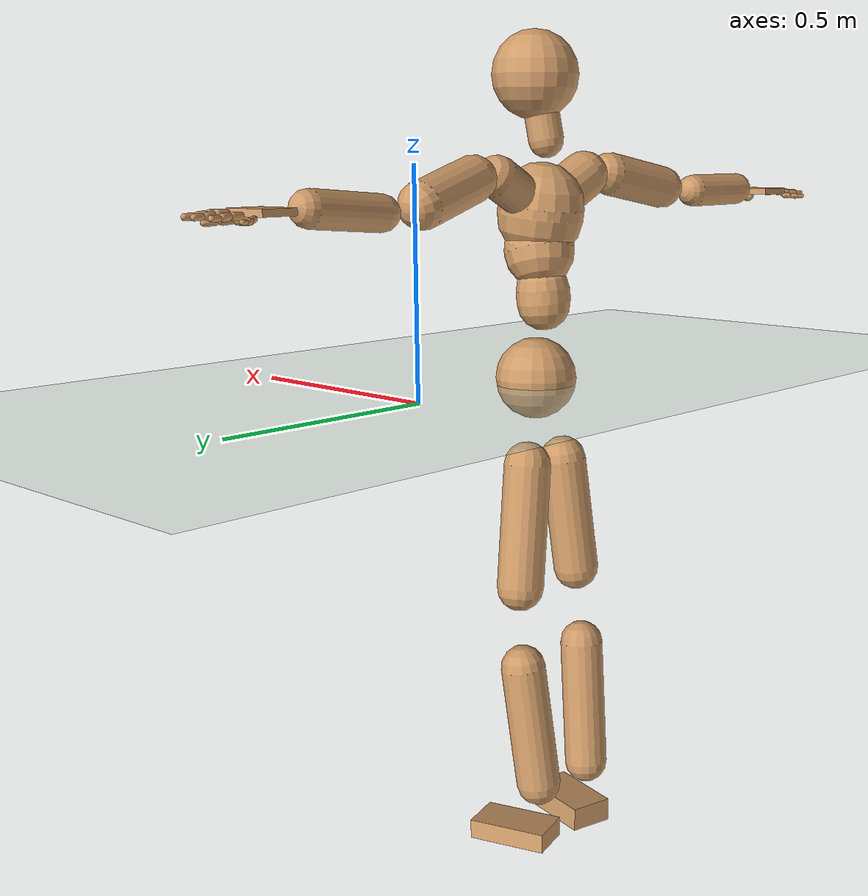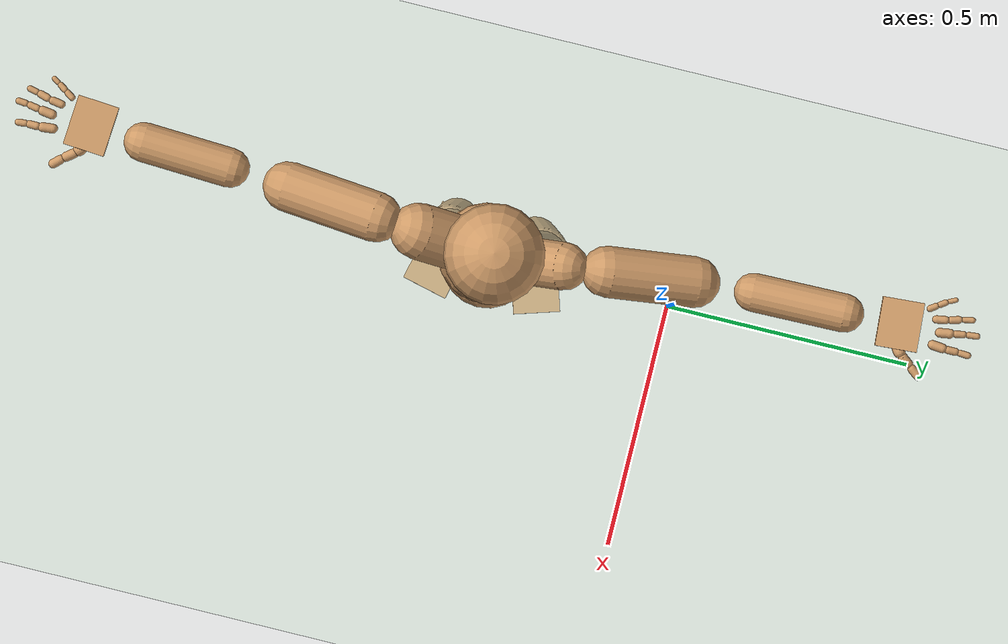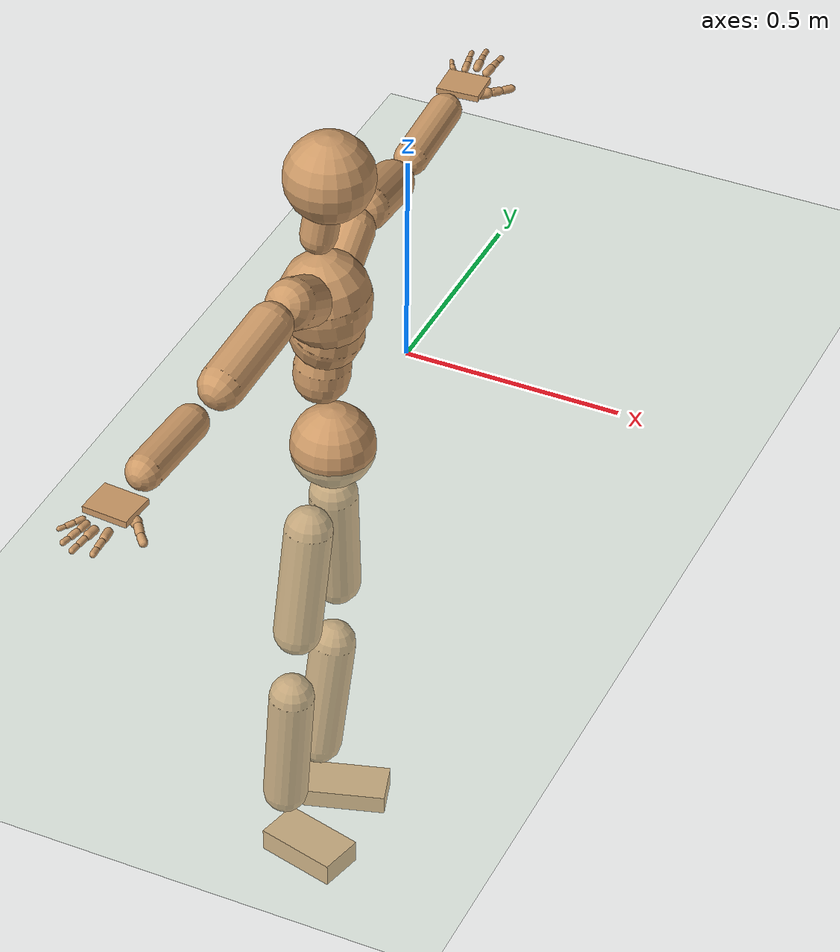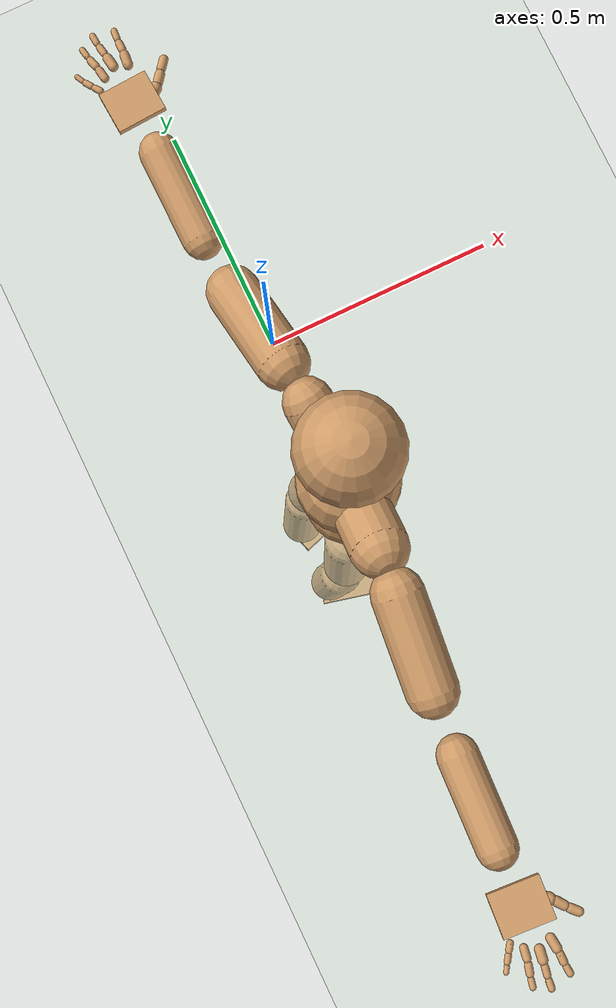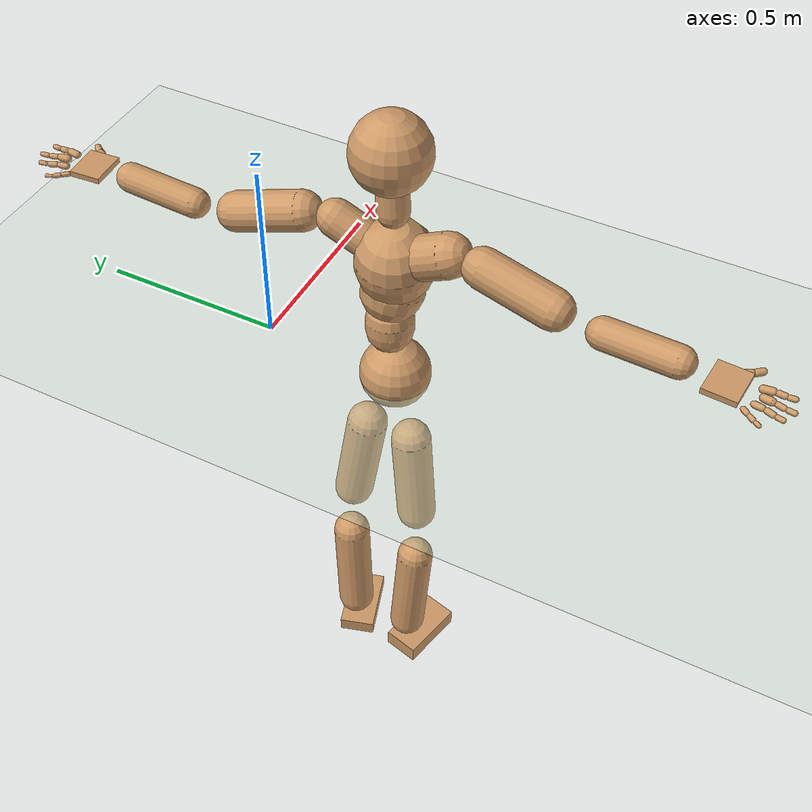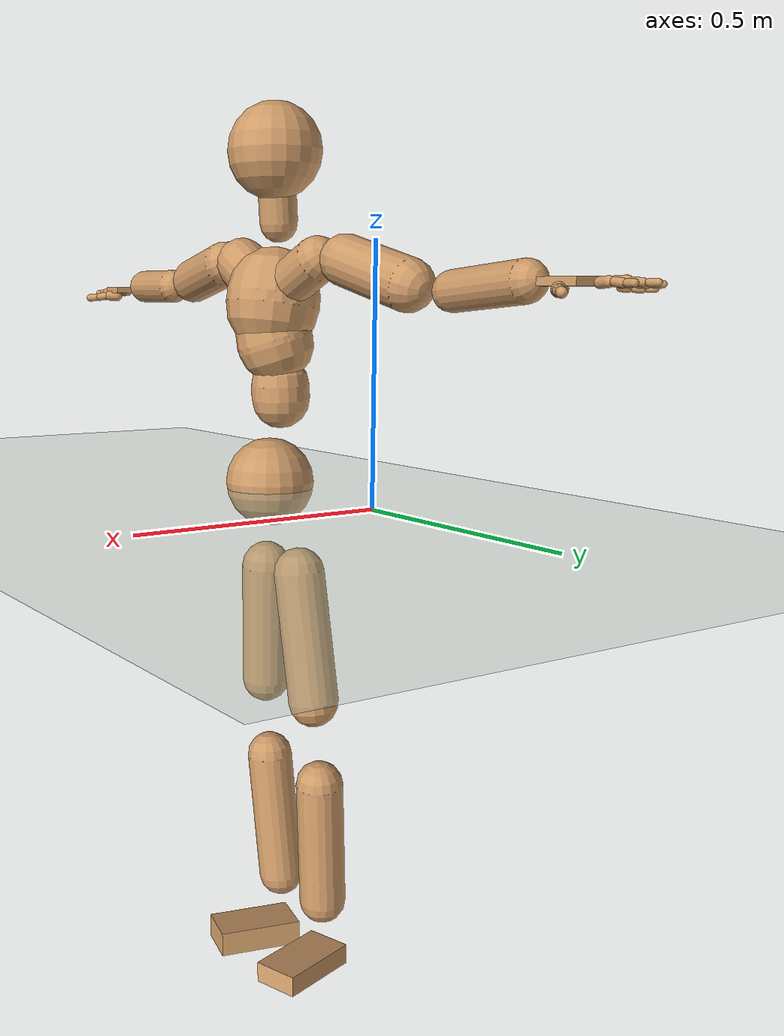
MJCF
<mujoco model="humanoid">
  <compiler coordinate="local" angle="radian"/>
  <default>
    <joint damping="0.0" armature="0.01" stiffness="0.0" limited="true"/>
    <geom conaffinity="1" condim="3" contype="7" margin="0.001" rgba="0.8 0.6 .4 1"/>
  </default>
  <asset>
    <texture type="skybox" builtin="gradient" rgb1=".4 .5 .6" rgb2="0 0 0" width="100" height="100"/>
    <texture builtin="flat" height="1278" mark="cross" markrgb="1 1 1" name="texgeom" random="0.01" rgb1="0.8 0.6 0.4" rgb2="0.8 0.6 0.4" type="cube" width="127"/>
    <texture builtin="checker" height="100" name="texplane" rgb1="0 0 0" rgb2="0.8 0.8 0.8" type="2d" width="100"/>
    <material name="MatPlane" reflectance="0.5" shininess="1" specular="1" texrepeat="60 60" texture="texplane"/>
    <material name="geom" texture="texgeom" texuniform="true"/>
  </asset>
  <worldbody>
    <light cutoff="100" diffuse="1 1 1" dir="-0 0 -1.3" directional="true" exponent="1" pos="0 0 1.3" specular=".1 .1 .1"/>
    <geom conaffinity="1" condim="3" name="floor" pos="0 0 0" rgba="0.8 0.9 0.8 1" size="100 100 .2" type="plane" material="MatPlane"/>
    <body name="Pelvis" pos="0.0005 -0.3733 0.0114">
      <freejoint name="Pelvis"/>
      <geom type="sphere" contype="1" conaffinity="1" density="500" size="0.0939" pos="0.0000 0.0000 0.0000" name="Pelvis"/>
      <body name="L_Hip" pos="-0.0281 0.053 -0.0981">
        <joint name="L_Hip_x" type="hinge" pos="0 0 0" axis="1 0 0" stiffness="800" damping="80" armature="0.02" range="-180.0000 180.0000"/>
        <joint name="L_Hip_y" type="hinge" pos="0 0 0" axis="0 1 0" stiffness="800" damping="80" armature="0.02" range="-180.0000 180.0000"/>
        <joint name="L_Hip_z" type="hinge" pos="0 0 0" axis="0 0 1" stiffness="800" damping="80" armature="0.02" range="-180.0000 180.0000"/>
        <geom type="capsule" contype="1" conaffinity="1" density="500" fromto="-0.0042 0.0129 -0.0939 -0.0166 0.0517 -0.3758" size="0.0544" name="L_Hip"/>
        <body name="L_Knee" pos="-0.0208 0.0647 -0.4697">
          <joint name="L_Knee_x" type="hinge" pos="0 0 0" axis="1 0 0" stiffness="800" damping="80" armature="0.02" range="-180.0000 180.0000"/>
          <joint name="L_Knee_y" type="hinge" pos="0 0 0" axis="0 1 0" stiffness="800" damping="80" armature="0.02" range="-180.0000 180.0000"/>
          <joint name="L_Knee_z" type="hinge" pos="0 0 0" axis="0 0 1" stiffness="800" damping="80" armature="0.02" range="-180.0000 180.0000"/>
          <geom type="capsule" contype="1" conaffinity="1" density="500" fromto="-0.0086 -0.0081 -0.0971 -0.0346 -0.0325 -0.3882" size="0.0521" name="L_Knee"/>
          <body name="L_Ankle" pos="-0.0432 -0.0407 -0.4853">
            <joint name="L_Ankle_x" type="hinge" pos="0 0 0" axis="1 0 0" stiffness="800" damping="80" armature="0.02" range="-180.0000 180.0000"/>
            <joint name="L_Ankle_y" type="hinge" pos="0 0 0" axis="0 1 0" stiffness="800" damping="80" armature="0.02" range="-180.0000 180.0000"/>
            <joint name="L_Ankle_z" type="hinge" pos="0 0 0" axis="0 0 1" stiffness="800" damping="80" armature="0.02" range="-180.0000 180.0000"/>
            <geom type="box" contype="1" conaffinity="1" density="500" pos="0.0713 0.0219 -0.0360" size="0.0948 0.0516 0.0227" quat="0.9889 0.0000 0.0000 0.1484" name="L_Ankle"/>
            <body name="L_Toe" pos="0.1426 0.0438 -0.0719">
              <joint name="L_Toe_x" type="hinge" pos="0 0 0" axis="1 0 0" stiffness="500" damping="50" armature="0.02" range="-180.0000 180.0000"/>
              <joint name="L_Toe_y" type="hinge" pos="0 0 0" axis="0 1 0" stiffness="500" damping="50" armature="0.02" range="-180.0000 180.0000"/>
              <joint name="L_Toe_z" type="hinge" pos="0 0 0" axis="0 0 1" stiffness="500" damping="50" armature="0.02" range="-180.0000 180.0000"/>
              <geom type="box" contype="1" conaffinity="1" density="500" pos="0.0000 0.0000 0.0346" size="0.001 0.0024 0.0011" quat="0.9883 0.0000 0.0000 0.1527" name="L_Toe"/>
            </body>
          </body>
        </body>
      </body>
      <body name="R_Hip" pos="-0.024 -0.0538 -0.1078">
        <joint name="R_Hip_x" type="hinge" pos="0 0 0" axis="1 0 0" stiffness="800" damping="80" armature="0.02" range="-180.0000 180.0000"/>
        <joint name="R_Hip_y" type="hinge" pos="0 0 0" axis="0 1 0" stiffness="800" damping="80" armature="0.02" range="-180.0000 180.0000"/>
        <joint name="R_Hip_z" type="hinge" pos="0 0 0" axis="0 0 1" stiffness="800" damping="80" armature="0.02" range="-180.0000 180.0000"/>
        <geom type="capsule" contype="1" conaffinity="1" density="500" fromto="-0.0052 -0.0099 -0.0901 -0.0210 -0.0397 -0.3606" size="0.0537" name="R_Hip"/>
        <body name="R_Knee" pos="-0.0262 -0.0496 -0.4507">
          <joint name="R_Knee_x" type="hinge" pos="0 0 0" axis="1 0 0" stiffness="800" damping="80" armature="0.02" range="-180.0000 180.0000"/>
          <joint name="R_Knee_y" type="hinge" pos="0 0 0" axis="0 1 0" stiffness="800" damping="80" armature="0.02" range="-180.0000 180.0000"/>
          <joint name="R_Knee_z" type="hinge" pos="0 0 0" axis="0 0 1" stiffness="800" damping="80" armature="0.02" range="-180.0000 180.0000"/>
          <geom type="capsule" contype="1" conaffinity="1" density="500" fromto="-0.0082 0.0031 -0.1005 -0.0328 0.0122 -0.4020" size="0.0513" name="R_Knee"/>
          <body name="R_Ankle" pos="-0.041 0.0153 -0.5024">
            <joint name="R_Ankle_x" type="hinge" pos="0 0 0" axis="1 0 0" stiffness="800" damping="80" armature="0.02" range="-180.0000 180.0000"/>
            <joint name="R_Ankle_y" type="hinge" pos="0 0 0" axis="0 1 0" stiffness="800" damping="80" armature="0.02" range="-180.0000 180.0000"/>
            <joint name="R_Ankle_z" type="hinge" pos="0 0 0" axis="0 0 1" stiffness="800" damping="80" armature="0.02" range="-180.0000 180.0000"/>
            <geom type="box" contype="1" conaffinity="1" density="500" pos="0.0744 -0.0180 -0.0351" size="0.0948 0.0519 0.0275" quat="0.9930 0.0000 0.0000 -0.1185" name="R_Ankle"/>
            <body name="R_Toe" pos="0.1488 -0.036 -0.0703">
              <joint name="R_Toe_x" type="hinge" pos="0 0 0" axis="1 0 0" stiffness="500" damping="50" armature="0.02" range="-180.0000 180.0000"/>
              <joint name="R_Toe_y" type="hinge" pos="0 0 0" axis="0 1 0" stiffness="500" damping="50" armature="0.02" range="-180.0000 180.0000"/>
              <joint name="R_Toe_z" type="hinge" pos="0 0 0" axis="0 0 1" stiffness="500" damping="50" armature="0.02" range="-180.0000 180.0000"/>
              <geom type="box" contype="1" conaffinity="1" density="500" pos="0.0000 0.0000 0.0289" size="0.0009 0.0024 0.0011" quat="0.9938 0.0000 0.0000 -0.1107" name="R_Toe"/>
            </body>
          </body>
        </body>
      </body>
      <body name="Torso" pos="-0.0306 -0.0003 0.1134">
        <joint name="Torso_x" type="hinge" pos="0 0 0" axis="1 0 0" stiffness="1000" damping="100" armature="0.02" range="-180.0000 180.0000"/>
        <joint name="Torso_y" type="hinge" pos="0 0 0" axis="0 1 0" stiffness="1000" damping="100" armature="0.02" range="-180.0000 180.0000"/>
        <joint name="Torso_z" type="hinge" pos="0 0 0" axis="0 0 1" stiffness="1000" damping="100" armature="0.02" range="-180.0000 180.0000"/>
        <geom type="capsule" contype="1" conaffinity="1" density="500" fromto="0.0060 0.0044 0.0925 0.0040 0.0029 0.0617" size="0.0616" name="Torso"/>
        <body name="Spine" pos="0.0101 0.0073 0.1542">
          <joint name="Spine_x" type="hinge" pos="0 0 0" axis="1 0 0" stiffness="1000" damping="100" armature="0.02" range="-180.0000 180.0000"/>
          <joint name="Spine_y" type="hinge" pos="0 0 0" axis="0 1 0" stiffness="1000" damping="100" armature="0.02" range="-180.0000 180.0000"/>
          <joint name="Spine_z" type="hinge" pos="0 0 0" axis="0 0 1" stiffness="1000" damping="100" armature="0.02" range="-180.0000 180.0000"/>
          <geom type="capsule" contype="1" conaffinity="1" density="500" fromto="0.0097 -0.0052 0.0342 0.0064 -0.0035 0.0228" size="0.0805" name="Spine"/>
          <body name="Chest" pos="0.0161 -0.0086 0.0571">
            <joint name="Chest_x" type="hinge" pos="0 0 0" axis="1 0 0" stiffness="1000" damping="100" armature="0.02" range="-180.0000 180.0000"/>
            <joint name="Chest_y" type="hinge" pos="0 0 0" axis="0 1 0" stiffness="1000" damping="100" armature="0.02" range="-180.0000 180.0000"/>
            <joint name="Chest_z" type="hinge" pos="0 0 0" axis="0 0 1" stiffness="1000" damping="100" armature="0.02" range="-180.0000 180.0000"/>
            <geom type="capsule" contype="1" conaffinity="1" density="500" fromto="-0.0093 -0.0012 0.0678 -0.0062 -0.0008 0.0452" size="0.0984" name="Chest"/>
            <body name="Neck" pos="-0.0273 -0.0067 0.1779">
              <joint name="Neck_x" type="hinge" pos="0 0 0" axis="1 0 0" stiffness="500" damping="50" armature="0.02" range="-180.0000 180.0000"/>
              <joint name="Neck_y" type="hinge" pos="0 0 0" axis="0 1 0" stiffness="500" damping="50" armature="0.02" range="-180.0000 180.0000"/>
              <joint name="Neck_z" type="hinge" pos="0 0 0" axis="0 0 1" stiffness="500" damping="50" armature="0.02" range="-180.0000 180.0000"/>
              <geom type="capsule" contype="1" conaffinity="1" density="500" fromto="0.0046 0.0040 0.0352 0.0183 0.0159 0.1406" size="0.0397" name="Neck"/>
              <body name="Head" pos="0.0229 0.0199 0.1758">
                <joint name="Head_x" type="hinge" pos="0 0 0" axis="1 0 0" stiffness="500" damping="50" armature="0.02" range="-180.0000 180.0000"/>
                <joint name="Head_y" type="hinge" pos="0 0 0" axis="0 1 0" stiffness="500" damping="50" armature="0.02" range="-180.0000 180.0000"/>
                <joint name="Head_z" type="hinge" pos="0 0 0" axis="0 0 1" stiffness="500" damping="50" armature="0.02" range="-180.0000 180.0000"/>
                <geom type="sphere" contype="1" conaffinity="1" density="500" size="0.0976" pos="0.0000 0.0000 0.0000" name="Head"/>
              </body>
            </body>
            <body name="L_Thorax" pos="-0.0079 0.0421 0.0805">
              <joint name="L_Thorax_x" type="hinge" pos="0 0 0" axis="1 0 0" stiffness="500" damping="50" armature="0.02" range="-180.0000 180.0000"/>
              <joint name="L_Thorax_y" type="hinge" pos="0 0 0" axis="0 1 0" stiffness="500" damping="50" armature="0.02" range="-180.0000 180.0000"/>
              <joint name="L_Thorax_z" type="hinge" pos="0 0 0" axis="0 0 1" stiffness="500" damping="50" armature="0.02" range="-180.0000 180.0000"/>
              <geom type="capsule" contype="1" conaffinity="1" density="500" fromto="-0.0023 0.0270 0.0134 -0.0093 0.1081 0.0536" size="0.0474" name="L_Thorax"/>
              <body name="L_Shoulder" pos="-0.0117 0.1351 0.067">
                <joint name="L_Shoulder_x" type="hinge" pos="0 0 0" axis="1 0 0" stiffness="500" damping="50" armature="0.02" range="-180.0000 180.0000"/>
                <joint name="L_Shoulder_y" type="hinge" pos="0 0 0" axis="0 1 0" stiffness="500" damping="50" armature="0.02" range="-180.0000 180.0000"/>
                <joint name="L_Shoulder_z" type="hinge" pos="0 0 0" axis="0 0 1" stiffness="500" damping="50" armature="0.02" range="-180.0000 180.0000"/>
                <geom type="capsule" contype="1" conaffinity="1" density="500" fromto="-0.0073 0.0569 -0.0163 -0.0293 0.2276 -0.0654" size="0.0509" name="L_Shoulder"/>
                <body name="L_Elbow" pos="-0.0366 0.2845 -0.0817">
                  <joint name="L_Elbow_x" type="hinge" pos="0 0 0" axis="1 0 0" stiffness="500" damping="50" armature="0.02" range="-720.0000 720.0000"/>
                  <joint name="L_Elbow_y" type="hinge" pos="0 0 0" axis="0 1 0" stiffness="500" damping="50" armature="0.02" range="-720.0000 720.0000"/>
                  <joint name="L_Elbow_z" type="hinge" pos="0 0 0" axis="0 0 1" stiffness="500" damping="50" armature="0.02" range="-720.0000 720.0000"/>
                  <geom type="capsule" contype="1" conaffinity="1" density="500" fromto="-0.0010 0.0608 0.0047 -0.0038 0.2433 0.0190" size="0.038" name="L_Elbow"/>
                  <body name="L_Wrist" pos="-0.0048 0.3041 0.0237">
                    <joint name="L_Wrist_x" type="hinge" pos="0 0 0" axis="1 0 0" stiffness="300" damping="30" armature="0.02" range="-180.0000 180.0000"/>
                    <joint name="L_Wrist_y" type="hinge" pos="0 0 0" axis="0 1 0" stiffness="300" damping="30" armature="0.02" range="-180.0000 180.0000"/>
                    <joint name="L_Wrist_z" type="hinge" pos="0 0 0" axis="0 0 1" stiffness="300" damping="30" armature="0.02" range="-180.0000 180.0000"/>
                    <geom type="box" contype="1" conaffinity="1" density="500" pos="-0.0033 0.0491 -0.0065" size="0.0413 0.0487 0.0073" quat="0.7304 0.0000 0.0000 -0.6830" name="L_Wrist"/>
                    <body name="L_Index1" pos="0.0196 0.1143 -0.0099">
                      <joint name="L_Index1_x" type="hinge" pos="0 0 0" axis="1 0 0" stiffness="100" damping="10" armature="0.02" range="-180.0000 180.0000"/>
                      <joint name="L_Index1_y" type="hinge" pos="0 0 0" axis="0 1 0" stiffness="100" damping="10" armature="0.02" range="-180.0000 180.0000"/>
                      <joint name="L_Index1_z" type="hinge" pos="0 0 0" axis="0 0 1" stiffness="100" damping="10" armature="0.02" range="-180.0000 180.0000"/>
                      <geom type="capsule" contype="1" conaffinity="1" density="500" fromto="0.0006 0.0068 0.0003 0.0026 0.0272 0.0011" size="0.0093" name="L_Index1"/>
                      <body name="L_Index2" pos="0.0032 0.034 0.0014">
                        <joint name="L_Index2_x" type="hinge" pos="0 0 0" axis="1 0 0" stiffness="100" damping="10" armature="0.02" range="-180.0000 180.0000"/>
                        <joint name="L_Index2_y" type="hinge" pos="0 0 0" axis="0 1 0" stiffness="100" damping="10" armature="0.02" range="-180.0000 180.0000"/>
                        <joint name="L_Index2_z" type="hinge" pos="0 0 0" axis="0 0 1" stiffness="100" damping="10" armature="0.02" range="-180.0000 180.0000"/>
                        <geom type="capsule" contype="1" conaffinity="1" density="500" fromto="-0.0000 0.0048 -0.0005 -0.0001 0.0193 -0.0020" size="0.0076" name="L_Index2"/>
                        <body name="L_Index3" pos="-0.0001 0.0241 -0.0025">
                          <joint name="L_Index3_x" type="hinge" pos="0 0 0" axis="1 0 0" stiffness="100" damping="10" armature="0.02" range="-180.0000 180.0000"/>
                          <joint name="L_Index3_y" type="hinge" pos="0 0 0" axis="0 1 0" stiffness="100" damping="10" armature="0.02" range="-180.0000 180.0000"/>
                          <joint name="L_Index3_z" type="hinge" pos="0 0 0" axis="0 0 1" stiffness="100" damping="10" armature="0.02" range="-180.0000 180.0000"/>
                          <geom type="capsule" contype="1" conaffinity="1" density="500" fromto="0.0004 0.0052 -0.0001 0.0015 0.0209 -0.0004" size="0.0065" name="L_Index3"/>
                        </body>
                      </body>
                    </body>
                    <body name="L_Middle1" pos="-0.0052 0.1227 -0.0078">
                      <joint name="L_Middle1_x" type="hinge" pos="0 0 0" axis="1 0 0" stiffness="100" damping="10" armature="0.02" range="-180.0000 180.0000"/>
                      <joint name="L_Middle1_y" type="hinge" pos="0 0 0" axis="0 1 0" stiffness="100" damping="10" armature="0.02" range="-180.0000 180.0000"/>
                      <joint name="L_Middle1_z" type="hinge" pos="0 0 0" axis="0 0 1" stiffness="100" damping="10" armature="0.02" range="-180.0000 180.0000"/>
                      <geom type="capsule" contype="1" conaffinity="1" density="500" fromto="-0.0010 0.0065 0.0000 -0.0039 0.0260 0.0001" size="0.0094" name="L_Middle1"/>
                      <body name="L_Middle2" pos="-0.0049 0.0325 0.0001">
                        <joint name="L_Middle2_x" type="hinge" pos="0 0 0" axis="1 0 0" stiffness="100" damping="10" armature="0.02" range="-180.0000 180.0000"/>
                        <joint name="L_Middle2_y" type="hinge" pos="0 0 0" axis="0 1 0" stiffness="100" damping="10" armature="0.02" range="-180.0000 180.0000"/>
                        <joint name="L_Middle2_z" type="hinge" pos="0 0 0" axis="0 0 1" stiffness="100" damping="10" armature="0.02" range="-180.0000 180.0000"/>
                        <geom type="capsule" contype="1" conaffinity="1" density="500" fromto="-0.0009 0.0050 -0.0005 -0.0036 0.0201 -0.0020" size="0.007" name="L_Middle2"/>
                        <body name="L_Middle3" pos="-0.0046 0.0251 -0.0025">
                          <joint name="L_Middle3_x" type="hinge" pos="0 0 0" axis="1 0 0" stiffness="100" damping="10" armature="0.02" range="-180.0000 180.0000"/>
                          <joint name="L_Middle3_y" type="hinge" pos="0 0 0" axis="0 1 0" stiffness="100" damping="10" armature="0.02" range="-180.0000 180.0000"/>
                          <joint name="L_Middle3_z" type="hinge" pos="0 0 0" axis="0 0 1" stiffness="100" damping="10" armature="0.02" range="-180.0000 180.0000"/>
                          <geom type="capsule" contype="1" conaffinity="1" density="500" fromto="-0.0005 0.0054 -0.0001 -0.0020 0.0217 -0.0004" size="0.0063" name="L_Middle3"/>
                        </body>
                      </body>
                    </body>
                    <body name="L_Pinky1" pos="-0.0453 0.0966 -0.0164">
                      <joint name="L_Pinky1_x" type="hinge" pos="0 0 0" axis="1 0 0" stiffness="100" damping="10" armature="0.02" range="-180.0000 180.0000"/>
                      <joint name="L_Pinky1_y" type="hinge" pos="0 0 0" axis="0 1 0" stiffness="100" damping="10" armature="0.02" range="-180.0000 180.0000"/>
                      <joint name="L_Pinky1_z" type="hinge" pos="0 0 0" axis="0 0 1" stiffness="100" damping="10" armature="0.02" range="-180.0000 180.0000"/>
                      <geom type="capsule" contype="1" conaffinity="1" density="500" fromto="-0.0024 0.0034 -0.0003 -0.0095 0.0138 -0.0012" size="0.0065" name="L_Pinky1"/>
                      <body name="L_Pinky2" pos="-0.0119 0.0172 -0.0015">
                        <joint name="L_Pinky2_x" type="hinge" pos="0 0 0" axis="1 0 0" stiffness="100" damping="10" armature="0.02" range="-180.0000 180.0000"/>
                        <joint name="L_Pinky2_y" type="hinge" pos="0 0 0" axis="0 1 0" stiffness="100" damping="10" armature="0.02" range="-180.0000 180.0000"/>
                        <joint name="L_Pinky2_z" type="hinge" pos="0 0 0" axis="0 0 1" stiffness="100" damping="10" armature="0.02" range="-180.0000 180.0000"/>
                        <geom type="capsule" contype="1" conaffinity="1" density="500" fromto="-0.0023 0.0034 -0.0003 -0.0091 0.0135 -0.0013" size="0.0062" name="L_Pinky2"/>
                        <body name="L_Pinky3" pos="-0.0113 0.0168 -0.0017">
                          <joint name="L_Pinky3_x" type="hinge" pos="0 0 0" axis="1 0 0" stiffness="100" damping="10" armature="0.02" range="-180.0000 180.0000"/>
                          <joint name="L_Pinky3_y" type="hinge" pos="0 0 0" axis="0 1 0" stiffness="100" damping="10" armature="0.02" range="-180.0000 180.0000"/>
                          <joint name="L_Pinky3_z" type="hinge" pos="0 0 0" axis="0 0 1" stiffness="100" damping="10" armature="0.02" range="-180.0000 180.0000"/>
                          <geom type="capsule" contype="1" conaffinity="1" density="500" fromto="-0.0019 0.0038 0.0001 -0.0075 0.0151 0.0003" size="0.0049" name="L_Pinky3"/>
                        </body>
                      </body>
                    </body>
                    <body name="L_Ring1" pos="-0.0289 0.1104 -0.011">
                      <joint name="L_Ring1_x" type="hinge" pos="0 0 0" axis="1 0 0" stiffness="100" damping="10" armature="0.02" range="-180.0000 180.0000"/>
                      <joint name="L_Ring1_y" type="hinge" pos="0 0 0" axis="0 1 0" stiffness="100" damping="10" armature="0.02" range="-180.0000 180.0000"/>
                      <joint name="L_Ring1_z" type="hinge" pos="0 0 0" axis="0 0 1" stiffness="100" damping="10" armature="0.02" range="-180.0000 180.0000"/>
                      <geom type="capsule" contype="1" conaffinity="1" density="500" fromto="-0.0011 0.0060 0.0001 -0.0042 0.0242 0.0005" size="0.0079" name="L_Ring1"/>
                      <body name="L_Ring2" pos="-0.0053 0.0302 0.0006">
                        <joint name="L_Ring2_x" type="hinge" pos="0 0 0" axis="1 0 0" stiffness="100" damping="10" armature="0.02" range="-180.0000 180.0000"/>
                        <joint name="L_Ring2_y" type="hinge" pos="0 0 0" axis="0 1 0" stiffness="100" damping="10" armature="0.02" range="-180.0000 180.0000"/>
                        <joint name="L_Ring2_z" type="hinge" pos="0 0 0" axis="0 0 1" stiffness="100" damping="10" armature="0.02" range="-180.0000 180.0000"/>
                        <geom type="capsule" contype="1" conaffinity="1" density="500" fromto="-0.0014 0.0049 -0.0004 -0.0056 0.0196 -0.0017" size="0.0075" name="L_Ring2"/>
                        <body name="L_Ring3" pos="-0.0071 0.0246 -0.0022">
                          <joint name="L_Ring3_x" type="hinge" pos="0 0 0" axis="1 0 0" stiffness="100" damping="10" armature="0.02" range="-180.0000 180.0000"/>
                          <joint name="L_Ring3_y" type="hinge" pos="0 0 0" axis="0 1 0" stiffness="100" damping="10" armature="0.02" range="-180.0000 180.0000"/>
                          <joint name="L_Ring3_z" type="hinge" pos="0 0 0" axis="0 0 1" stiffness="100" damping="10" armature="0.02" range="-180.0000 180.0000"/>
                          <geom type="capsule" contype="1" conaffinity="1" density="500" fromto="-0.0010 0.0053 -0.0000 -0.0040 0.0212 -0.0001" size="0.0059" name="L_Ring3"/>
                        </body>
                      </body>
                    </body>
                    <body name="L_Thumb1" pos="0.0268 0.0474 -0.0203">
                      <joint name="L_Thumb1_x" type="hinge" pos="0 0 0" axis="1 0 0" stiffness="100" damping="10" armature="0.02" range="-180.0000 180.0000"/>
                      <joint name="L_Thumb1_y" type="hinge" pos="0 0 0" axis="0 1 0" stiffness="100" damping="10" armature="0.02" range="-180.0000 180.0000"/>
                      <joint name="L_Thumb1_z" type="hinge" pos="0 0 0" axis="0 0 1" stiffness="100" damping="10" armature="0.02" range="-180.0000 180.0000"/>
                      <geom type="capsule" contype="1" conaffinity="1" density="500" fromto="0.0054 0.0037 0.0002 0.0217 0.0149 0.0007" size="0.0124" name="L_Thumb1"/>
                      <body name="L_Thumb2" pos="0.0271 0.0186 0.0009">
                        <joint name="L_Thumb2_x" type="hinge" pos="0 0 0" axis="1 0 0" stiffness="100" damping="10" armature="0.02" range="-180.0000 180.0000"/>
                        <joint name="L_Thumb2_y" type="hinge" pos="0 0 0" axis="0 1 0" stiffness="100" damping="10" armature="0.02" range="-180.0000 180.0000"/>
                        <joint name="L_Thumb2_z" type="hinge" pos="0 0 0" axis="0 0 1" stiffness="100" damping="10" armature="0.02" range="-180.0000 180.0000"/>
                        <geom type="capsule" contype="1" conaffinity="1" density="500" fromto="0.0034 0.0046 -0.0008 0.0137 0.0183 -0.0031" size="0.0096" name="L_Thumb2"/>
                        <body name="L_Thumb3" pos="0.0172 0.0229 -0.0039">
                          <joint name="L_Thumb3_x" type="hinge" pos="0 0 0" axis="1 0 0" stiffness="100" damping="10" armature="0.02" range="-180.0000 180.0000"/>
                          <joint name="L_Thumb3_y" type="hinge" pos="0 0 0" axis="0 1 0" stiffness="100" damping="10" armature="0.02" range="-180.0000 180.0000"/>
                          <joint name="L_Thumb3_z" type="hinge" pos="0 0 0" axis="0 0 1" stiffness="100" damping="10" armature="0.02" range="-180.0000 180.0000"/>
                          <geom type="capsule" contype="1" conaffinity="1" density="500" fromto="0.0038 0.0050 -0.0004 0.0153 0.0199 -0.0015" size="0.0088" name="L_Thumb3"/>
                        </body>
                      </body>
                    </body>
                  </body>
                </body>
              </body>
            </body>
            <body name="R_Thorax" pos="-0.0113 -0.0415 0.0806">
              <joint name="R_Thorax_x" type="hinge" pos="0 0 0" axis="1 0 0" stiffness="500" damping="50" armature="0.02" range="-180.0000 180.0000"/>
              <joint name="R_Thorax_y" type="hinge" pos="0 0 0" axis="0 1 0" stiffness="500" damping="50" armature="0.02" range="-180.0000 180.0000"/>
              <joint name="R_Thorax_z" type="hinge" pos="0 0 0" axis="0 0 1" stiffness="500" damping="50" armature="0.02" range="-180.0000 180.0000"/>
              <geom type="capsule" contype="1" conaffinity="1" density="500" fromto="-0.0012 -0.0251 0.0133 -0.0047 -0.1003 0.0534" size="0.0555" name="R_Thorax"/>
              <body name="R_Shoulder" pos="-0.0058 -0.1254 0.0667">
                <joint name="R_Shoulder_x" type="hinge" pos="0 0 0" axis="1 0 0" stiffness="500" damping="50" armature="0.02" range="-180.0000 180.0000"/>
                <joint name="R_Shoulder_y" type="hinge" pos="0 0 0" axis="0 1 0" stiffness="500" damping="50" armature="0.02" range="-180.0000 180.0000"/>
                <joint name="R_Shoulder_z" type="hinge" pos="0 0 0" axis="0 0 1" stiffness="500" damping="50" armature="0.02" range="-180.0000 180.0000"/>
                <geom type="capsule" contype="1" conaffinity="1" density="500" fromto="-0.0058 -0.0608 -0.0114 -0.0231 -0.2432 -0.0454" size="0.0496" name="R_Shoulder"/>
                <body name="R_Elbow" pos="-0.0289 -0.304 -0.0568">
                  <joint name="R_Elbow_x" type="hinge" pos="0 0 0" axis="1 0 0" stiffness="500" damping="50" armature="0.02" range="-720.0000 720.0000"/>
                  <joint name="R_Elbow_y" type="hinge" pos="0 0 0" axis="0 1 0" stiffness="500" damping="50" armature="0.02" range="-720.0000 720.0000"/>
                  <joint name="R_Elbow_z" type="hinge" pos="0 0 0" axis="0 0 1" stiffness="500" damping="50" armature="0.02" range="-720.0000 720.0000"/>
                  <geom type="capsule" contype="1" conaffinity="1" density="500" fromto="-0.0029 -0.0586 0.0005 -0.0114 -0.2345 0.0020" size="0.039" name="R_Elbow"/>
                  <body name="R_Wrist" pos="-0.0143 -0.2931 0.0025">
                    <joint name="R_Wrist_x" type="hinge" pos="0 0 0" axis="1 0 0" stiffness="300" damping="30" armature="0.02" range="-180.0000 180.0000"/>
                    <joint name="R_Wrist_y" type="hinge" pos="0 0 0" axis="0 1 0" stiffness="300" damping="30" armature="0.02" range="-180.0000 180.0000"/>
                    <joint name="R_Wrist_z" type="hinge" pos="0 0 0" axis="0 0 1" stiffness="300" damping="30" armature="0.02" range="-180.0000 180.0000"/>
                    <geom type="box" contype="1" conaffinity="1" density="500" pos="-0.0036 -0.0489 -0.0083" size="0.0413 0.05 0.0075" quat="0.7327 0.0000 0.0000 0.6805" name="R_Wrist"/>
                    <body name="R_Index1" pos="0.0189 -0.1138 -0.0134">
                      <joint name="R_Index1_x" type="hinge" pos="0 0 0" axis="1 0 0" stiffness="100" damping="10" armature="0.02" range="-180.0000 180.0000"/>
                      <joint name="R_Index1_y" type="hinge" pos="0 0 0" axis="0 1 0" stiffness="100" damping="10" armature="0.02" range="-180.0000 180.0000"/>
                      <joint name="R_Index1_z" type="hinge" pos="0 0 0" axis="0 0 1" stiffness="100" damping="10" armature="0.02" range="-180.0000 180.0000"/>
                      <geom type="capsule" contype="1" conaffinity="1" density="500" fromto="0.0006 -0.0068 0.0003 0.0026 -0.0272 0.0011" size="0.0093" name="R_Index1"/>
                      <body name="R_Index2" pos="0.0032 -0.034 0.0014">
                        <joint name="R_Index2_x" type="hinge" pos="0 0 0" axis="1 0 0" stiffness="100" damping="10" armature="0.02" range="-180.0000 180.0000"/>
                        <joint name="R_Index2_y" type="hinge" pos="0 0 0" axis="0 1 0" stiffness="100" damping="10" armature="0.02" range="-180.0000 180.0000"/>
                        <joint name="R_Index2_z" type="hinge" pos="0 0 0" axis="0 0 1" stiffness="100" damping="10" armature="0.02" range="-180.0000 180.0000"/>
                        <geom type="capsule" contype="1" conaffinity="1" density="500" fromto="-0.0000 -0.0048 -0.0005 -0.0001 -0.0193 -0.0020" size="0.0076" name="R_Index2"/>
                        <body name="R_Index3" pos="-0.0001 -0.0241 -0.0025">
                          <joint name="R_Index3_x" type="hinge" pos="0 0 0" axis="1 0 0" stiffness="100" damping="10" armature="0.02" range="-180.0000 180.0000"/>
                          <joint name="R_Index3_y" type="hinge" pos="0 0 0" axis="0 1 0" stiffness="100" damping="10" armature="0.02" range="-180.0000 180.0000"/>
                          <joint name="R_Index3_z" type="hinge" pos="0 0 0" axis="0 0 1" stiffness="100" damping="10" armature="0.02" range="-180.0000 180.0000"/>
                          <geom type="capsule" contype="1" conaffinity="1" density="500" fromto="0.0004 -0.0044 -0.0001 0.0015 -0.0177 -0.0004" size="0.0068" name="R_Index3"/>
                        </body>
                      </body>
                    </body>
                    <body name="R_Middle1" pos="-0.0058 -0.1222 -0.0112">
                      <joint name="R_Middle1_x" type="hinge" pos="0 0 0" axis="1 0 0" stiffness="100" damping="10" armature="0.02" range="-180.0000 180.0000"/>
                      <joint name="R_Middle1_y" type="hinge" pos="0 0 0" axis="0 1 0" stiffness="100" damping="10" armature="0.02" range="-180.0000 180.0000"/>
                      <joint name="R_Middle1_z" type="hinge" pos="0 0 0" axis="0 0 1" stiffness="100" damping="10" armature="0.02" range="-180.0000 180.0000"/>
                      <geom type="capsule" contype="1" conaffinity="1" density="500" fromto="-0.0010 -0.0065 0.0000 -0.0039 -0.0260 0.0001" size="0.0094" name="R_Middle1"/>
                      <body name="R_Middle2" pos="-0.0049 -0.0325 0.0001">
                        <joint name="R_Middle2_x" type="hinge" pos="0 0 0" axis="1 0 0" stiffness="100" damping="10" armature="0.02" range="-180.0000 180.0000"/>
                        <joint name="R_Middle2_y" type="hinge" pos="0 0 0" axis="0 1 0" stiffness="100" damping="10" armature="0.02" range="-180.0000 180.0000"/>
                        <joint name="R_Middle2_z" type="hinge" pos="0 0 0" axis="0 0 1" stiffness="100" damping="10" armature="0.02" range="-180.0000 180.0000"/>
                        <geom type="capsule" contype="1" conaffinity="1" density="500" fromto="-0.0009 -0.0050 -0.0005 -0.0036 -0.0201 -0.0020" size="0.007" name="R_Middle2"/>
                        <body name="R_Middle3" pos="-0.0046 -0.0251 -0.0025">
                          <joint name="R_Middle3_x" type="hinge" pos="0 0 0" axis="1 0 0" stiffness="100" damping="10" armature="0.02" range="-180.0000 180.0000"/>
                          <joint name="R_Middle3_y" type="hinge" pos="0 0 0" axis="0 1 0" stiffness="100" damping="10" armature="0.02" range="-180.0000 180.0000"/>
                          <joint name="R_Middle3_z" type="hinge" pos="0 0 0" axis="0 0 1" stiffness="100" damping="10" armature="0.02" range="-180.0000 180.0000"/>
                          <geom type="capsule" contype="1" conaffinity="1" density="500" fromto="-0.0005 -0.0046 -0.0001 -0.0020 -0.0185 -0.0004" size="0.0066" name="R_Middle3"/>
                        </body>
                      </body>
                    </body>
                    <body name="R_Pinky1" pos="-0.046 -0.0961 -0.0199">
                      <joint name="R_Pinky1_x" type="hinge" pos="0 0 0" axis="1 0 0" stiffness="100" damping="10" armature="0.02" range="-180.0000 180.0000"/>
                      <joint name="R_Pinky1_y" type="hinge" pos="0 0 0" axis="0 1 0" stiffness="100" damping="10" armature="0.02" range="-180.0000 180.0000"/>
                      <joint name="R_Pinky1_z" type="hinge" pos="0 0 0" axis="0 0 1" stiffness="100" damping="10" armature="0.02" range="-180.0000 180.0000"/>
                      <geom type="capsule" contype="1" conaffinity="1" density="500" fromto="-0.0024 -0.0034 -0.0003 -0.0095 -0.0138 -0.0012" size="0.0065" name="R_Pinky1"/>
                      <body name="R_Pinky2" pos="-0.0119 -0.0172 -0.0015">
                        <joint name="R_Pinky2_x" type="hinge" pos="0 0 0" axis="1 0 0" stiffness="100" damping="10" armature="0.02" range="-180.0000 180.0000"/>
                        <joint name="R_Pinky2_y" type="hinge" pos="0 0 0" axis="0 1 0" stiffness="100" damping="10" armature="0.02" range="-180.0000 180.0000"/>
                        <joint name="R_Pinky2_z" type="hinge" pos="0 0 0" axis="0 0 1" stiffness="100" damping="10" armature="0.02" range="-180.0000 180.0000"/>
                        <geom type="capsule" contype="1" conaffinity="1" density="500" fromto="-0.0023 -0.0034 -0.0003 -0.0091 -0.0135 -0.0013" size="0.0062" name="R_Pinky2"/>
                        <body name="R_Pinky3" pos="-0.0113 -0.0168 -0.0017">
                          <joint name="R_Pinky3_x" type="hinge" pos="0 0 0" axis="1 0 0" stiffness="100" damping="10" armature="0.02" range="-180.0000 180.0000"/>
                          <joint name="R_Pinky3_y" type="hinge" pos="0 0 0" axis="0 1 0" stiffness="100" damping="10" armature="0.02" range="-180.0000 180.0000"/>
                          <joint name="R_Pinky3_z" type="hinge" pos="0 0 0" axis="0 0 1" stiffness="100" damping="10" armature="0.02" range="-180.0000 180.0000"/>
                          <geom type="capsule" contype="1" conaffinity="1" density="500" fromto="-0.0019 -0.0030 0.0001 -0.0075 -0.0119 0.0003" size="0.0051" name="R_Pinky3"/>
                        </body>
                      </body>
                    </body>
                    <body name="R_Ring1" pos="-0.0295 -0.11 -0.0144">
                      <joint name="R_Ring1_x" type="hinge" pos="0 0 0" axis="1 0 0" stiffness="100" damping="10" armature="0.02" range="-180.0000 180.0000"/>
                      <joint name="R_Ring1_y" type="hinge" pos="0 0 0" axis="0 1 0" stiffness="100" damping="10" armature="0.02" range="-180.0000 180.0000"/>
                      <joint name="R_Ring1_z" type="hinge" pos="0 0 0" axis="0 0 1" stiffness="100" damping="10" armature="0.02" range="-180.0000 180.0000"/>
                      <geom type="capsule" contype="1" conaffinity="1" density="500" fromto="-0.0011 -0.0060 0.0001 -0.0042 -0.0242 0.0005" size="0.0079" name="R_Ring1"/>
                      <body name="R_Ring2" pos="-0.0053 -0.0302 0.0006">
                        <joint name="R_Ring2_x" type="hinge" pos="0 0 0" axis="1 0 0" stiffness="100" damping="10" armature="0.02" range="-180.0000 180.0000"/>
                        <joint name="R_Ring2_y" type="hinge" pos="0 0 0" axis="0 1 0" stiffness="100" damping="10" armature="0.02" range="-180.0000 180.0000"/>
                        <joint name="R_Ring2_z" type="hinge" pos="0 0 0" axis="0 0 1" stiffness="100" damping="10" armature="0.02" range="-180.0000 180.0000"/>
                        <geom type="capsule" contype="1" conaffinity="1" density="500" fromto="-0.0014 -0.0049 -0.0004 -0.0056 -0.0196 -0.0017" size="0.0075" name="R_Ring2"/>
                        <body name="R_Ring3" pos="-0.0071 -0.0246 -0.0022">
                          <joint name="R_Ring3_x" type="hinge" pos="0 0 0" axis="1 0 0" stiffness="100" damping="10" armature="0.02" range="-180.0000 180.0000"/>
                          <joint name="R_Ring3_y" type="hinge" pos="0 0 0" axis="0 1 0" stiffness="100" damping="10" armature="0.02" range="-180.0000 180.0000"/>
                          <joint name="R_Ring3_z" type="hinge" pos="0 0 0" axis="0 0 1" stiffness="100" damping="10" armature="0.02" range="-180.0000 180.0000"/>
                          <geom type="capsule" contype="1" conaffinity="1" density="500" fromto="-0.0010 -0.0045 -0.0000 -0.0040 -0.0180 -0.0001" size="0.0062" name="R_Ring3"/>
                        </body>
                      </body>
                    </body>
                    <body name="R_Thumb1" pos="0.0262 -0.0469 -0.0237">
                      <joint name="R_Thumb1_x" type="hinge" pos="0 0 0" axis="1 0 0" stiffness="100" damping="10" armature="0.02" range="-180.0000 180.0000"/>
                      <joint name="R_Thumb1_y" type="hinge" pos="0 0 0" axis="0 1 0" stiffness="100" damping="10" armature="0.02" range="-180.0000 180.0000"/>
                      <joint name="R_Thumb1_z" type="hinge" pos="0 0 0" axis="0 0 1" stiffness="100" damping="10" armature="0.02" range="-180.0000 180.0000"/>
                      <geom type="capsule" contype="1" conaffinity="1" density="500" fromto="0.0054 -0.0037 0.0002 0.0217 -0.0149 0.0007" size="0.0124" name="R_Thumb1"/>
                      <body name="R_Thumb2" pos="0.0271 -0.0186 0.0009">
                        <joint name="R_Thumb2_x" type="hinge" pos="0 0 0" axis="1 0 0" stiffness="100" damping="10" armature="0.02" range="-180.0000 180.0000"/>
                        <joint name="R_Thumb2_y" type="hinge" pos="0 0 0" axis="0 1 0" stiffness="100" damping="10" armature="0.02" range="-180.0000 180.0000"/>
                        <joint name="R_Thumb2_z" type="hinge" pos="0 0 0" axis="0 0 1" stiffness="100" damping="10" armature="0.02" range="-180.0000 180.0000"/>
                        <geom type="capsule" contype="1" conaffinity="1" density="500" fromto="0.0034 -0.0046 -0.0008 0.0137 -0.0183 -0.0031" size="0.0096" name="R_Thumb2"/>
                        <body name="R_Thumb3" pos="0.0172 -0.0229 -0.0039">
                          <joint name="R_Thumb3_x" type="hinge" pos="0 0 0" axis="1 0 0" stiffness="100" damping="10" armature="0.02" range="-180.0000 180.0000"/>
                          <joint name="R_Thumb3_y" type="hinge" pos="0 0 0" axis="0 1 0" stiffness="100" damping="10" armature="0.02" range="-180.0000 180.0000"/>
                          <joint name="R_Thumb3_z" type="hinge" pos="0 0 0" axis="0 0 1" stiffness="100" damping="10" armature="0.02" range="-180.0000 180.0000"/>
                          <geom type="capsule" contype="1" conaffinity="1" density="500" fromto="0.0038 -0.0042 -0.0004 0.0153 -0.0167 -0.0015" size="0.0091" name="R_Thumb3"/>
                        </body>
                      </body>
                    </body>
                  </body>
                </body>
              </body>
            </body>
          </body>
        </body>
      </body>
    </body>
  </worldbody>
  <actuator>
    <motor name="L_Hip_x" joint="L_Hip_x" gear="500"/>
    <motor name="L_Hip_y" joint="L_Hip_y" gear="500"/>
    <motor name="L_Hip_z" joint="L_Hip_z" gear="500"/>
    <motor name="L_Knee_x" joint="L_Knee_x" gear="500"/>
    <motor name="L_Knee_y" joint="L_Knee_y" gear="500"/>
    <motor name="L_Knee_z" joint="L_Knee_z" gear="500"/>
    <motor name="L_Ankle_x" joint="L_Ankle_x" gear="500"/>
    <motor name="L_Ankle_y" joint="L_Ankle_y" gear="500"/>
    <motor name="L_Ankle_z" joint="L_Ankle_z" gear="500"/>
    <motor name="L_Toe_x" joint="L_Toe_x" gear="500"/>
    <motor name="L_Toe_y" joint="L_Toe_y" gear="500"/>
    <motor name="L_Toe_z" joint="L_Toe_z" gear="500"/>
    <motor name="R_Hip_x" joint="R_Hip_x" gear="500"/>
    <motor name="R_Hip_y" joint="R_Hip_y" gear="500"/>
    <motor name="R_Hip_z" joint="R_Hip_z" gear="500"/>
    <motor name="R_Knee_x" joint="R_Knee_x" gear="500"/>
    <motor name="R_Knee_y" joint="R_Knee_y" gear="500"/>
    <motor name="R_Knee_z" joint="R_Knee_z" gear="500"/>
    <motor name="R_Ankle_x" joint="R_Ankle_x" gear="500"/>
    <motor name="R_Ankle_y" joint="R_Ankle_y" gear="500"/>
    <motor name="R_Ankle_z" joint="R_Ankle_z" gear="500"/>
    <motor name="R_Toe_x" joint="R_Toe_x" gear="500"/>
    <motor name="R_Toe_y" joint="R_Toe_y" gear="500"/>
    <motor name="R_Toe_z" joint="R_Toe_z" gear="500"/>
    <motor name="Torso_x" joint="Torso_x" gear="500"/>
    <motor name="Torso_y" joint="Torso_y" gear="500"/>
    <motor name="Torso_z" joint="Torso_z" gear="500"/>
    <motor name="Spine_x" joint="Spine_x" gear="500"/>
    <motor name="Spine_y" joint="Spine_y" gear="500"/>
    <motor name="Spine_z" joint="Spine_z" gear="500"/>
    <motor name="Chest_x" joint="Chest_x" gear="500"/>
    <motor name="Chest_y" joint="Chest_y" gear="500"/>
    <motor name="Chest_z" joint="Chest_z" gear="500"/>
    <motor name="Neck_x" joint="Neck_x" gear="500"/>
    <motor name="Neck_y" joint="Neck_y" gear="500"/>
    <motor name="Neck_z" joint="Neck_z" gear="500"/>
    <motor name="Head_x" joint="Head_x" gear="500"/>
    <motor name="Head_y" joint="Head_y" gear="500"/>
    <motor name="Head_z" joint="Head_z" gear="500"/>
    <motor name="L_Thorax_x" joint="L_Thorax_x" gear="500"/>
    <motor name="L_Thorax_y" joint="L_Thorax_y" gear="500"/>
    <motor name="L_Thorax_z" joint="L_Thorax_z" gear="500"/>
    <motor name="L_Shoulder_x" joint="L_Shoulder_x" gear="500"/>
    <motor name="L_Shoulder_y" joint="L_Shoulder_y" gear="500"/>
    <motor name="L_Shoulder_z" joint="L_Shoulder_z" gear="500"/>
    <motor name="L_Elbow_x" joint="L_Elbow_x" gear="500"/>
    <motor name="L_Elbow_y" joint="L_Elbow_y" gear="500"/>
    <motor name="L_Elbow_z" joint="L_Elbow_z" gear="500"/>
    <motor name="L_Wrist_x" joint="L_Wrist_x" gear="500"/>
    <motor name="L_Wrist_y" joint="L_Wrist_y" gear="500"/>
    <motor name="L_Wrist_z" joint="L_Wrist_z" gear="500"/>
    <motor name="L_Index1_x" joint="L_Index1_x" gear="500"/>
    <motor name="L_Index1_y" joint="L_Index1_y" gear="500"/>
    <motor name="L_Index1_z" joint="L_Index1_z" gear="500"/>
    <motor name="L_Index2_x" joint="L_Index2_x" gear="500"/>
    <motor name="L_Index2_y" joint="L_Index2_y" gear="500"/>
    <motor name="L_Index2_z" joint="L_Index2_z" gear="500"/>
    <motor name="L_Index3_x" joint="L_Index3_x" gear="500"/>
    <motor name="L_Index3_y" joint="L_Index3_y" gear="500"/>
    <motor name="L_Index3_z" joint="L_Index3_z" gear="500"/>
    <motor name="L_Middle1_x" joint="L_Middle1_x" gear="500"/>
    <motor name="L_Middle1_y" joint="L_Middle1_y" gear="500"/>
    <motor name="L_Middle1_z" joint="L_Middle1_z" gear="500"/>
    <motor name="L_Middle2_x" joint="L_Middle2_x" gear="500"/>
    <motor name="L_Middle2_y" joint="L_Middle2_y" gear="500"/>
    <motor name="L_Middle2_z" joint="L_Middle2_z" gear="500"/>
    <motor name="L_Middle3_x" joint="L_Middle3_x" gear="500"/>
    <motor name="L_Middle3_y" joint="L_Middle3_y" gear="500"/>
    <motor name="L_Middle3_z" joint="L_Middle3_z" gear="500"/>
    <motor name="L_Pinky1_x" joint="L_Pinky1_x" gear="500"/>
    <motor name="L_Pinky1_y" joint="L_Pinky1_y" gear="500"/>
    <motor name="L_Pinky1_z" joint="L_Pinky1_z" gear="500"/>
    <motor name="L_Pinky2_x" joint="L_Pinky2_x" gear="500"/>
    <motor name="L_Pinky2_y" joint="L_Pinky2_y" gear="500"/>
    <motor name="L_Pinky2_z" joint="L_Pinky2_z" gear="500"/>
    <motor name="L_Pinky3_x" joint="L_Pinky3_x" gear="500"/>
    <motor name="L_Pinky3_y" joint="L_Pinky3_y" gear="500"/>
    <motor name="L_Pinky3_z" joint="L_Pinky3_z" gear="500"/>
    <motor name="L_Ring1_x" joint="L_Ring1_x" gear="500"/>
    <motor name="L_Ring1_y" joint="L_Ring1_y" gear="500"/>
    <motor name="L_Ring1_z" joint="L_Ring1_z" gear="500"/>
    <motor name="L_Ring2_x" joint="L_Ring2_x" gear="500"/>
    <motor name="L_Ring2_y" joint="L_Ring2_y" gear="500"/>
    <motor name="L_Ring2_z" joint="L_Ring2_z" gear="500"/>
    <motor name="L_Ring3_x" joint="L_Ring3_x" gear="500"/>
    <motor name="L_Ring3_y" joint="L_Ring3_y" gear="500"/>
    <motor name="L_Ring3_z" joint="L_Ring3_z" gear="500"/>
    <motor name="L_Thumb1_x" joint="L_Thumb1_x" gear="500"/>
    <motor name="L_Thumb1_y" joint="L_Thumb1_y" gear="500"/>
    <motor name="L_Thumb1_z" joint="L_Thumb1_z" gear="500"/>
    <motor name="L_Thumb2_x" joint="L_Thumb2_x" gear="500"/>
    <motor name="L_Thumb2_y" joint="L_Thumb2_y" gear="500"/>
    <motor name="L_Thumb2_z" joint="L_Thumb2_z" gear="500"/>
    <motor name="L_Thumb3_x" joint="L_Thumb3_x" gear="500"/>
    <motor name="L_Thumb3_y" joint="L_Thumb3_y" gear="500"/>
    <motor name="L_Thumb3_z" joint="L_Thumb3_z" gear="500"/>
    <motor name="R_Thorax_x" joint="R_Thorax_x" gear="500"/>
    <motor name="R_Thorax_y" joint="R_Thorax_y" gear="500"/>
    <motor name="R_Thorax_z" joint="R_Thorax_z" gear="500"/>
    <motor name="R_Shoulder_x" joint="R_Shoulder_x" gear="500"/>
    <motor name="R_Shoulder_y" joint="R_Shoulder_y" gear="500"/>
    <motor name="R_Shoulder_z" joint="R_Shoulder_z" gear="500"/>
    <motor name="R_Elbow_x" joint="R_Elbow_x" gear="500"/>
    <motor name="R_Elbow_y" joint="R_Elbow_y" gear="500"/>
    <motor name="R_Elbow_z" joint="R_Elbow_z" gear="500"/>
    <motor name="R_Wrist_x" joint="R_Wrist_x" gear="500"/>
    <motor name="R_Wrist_y" joint="R_Wrist_y" gear="500"/>
    <motor name="R_Wrist_z" joint="R_Wrist_z" gear="500"/>
    <motor name="R_Index1_x" joint="R_Index1_x" gear="500"/>
    <motor name="R_Index1_y" joint="R_Index1_y" gear="500"/>
    <motor name="R_Index1_z" joint="R_Index1_z" gear="500"/>
    <motor name="R_Index2_x" joint="R_Index2_x" gear="500"/>
    <motor name="R_Index2_y" joint="R_Index2_y" gear="500"/>
    <motor name="R_Index2_z" joint="R_Index2_z" gear="500"/>
    <motor name="R_Index3_x" joint="R_Index3_x" gear="500"/>
    <motor name="R_Index3_y" joint="R_Index3_y" gear="500"/>
    <motor name="R_Index3_z" joint="R_Index3_z" gear="500"/>
    <motor name="R_Middle1_x" joint="R_Middle1_x" gear="500"/>
    <motor name="R_Middle1_y" joint="R_Middle1_y" gear="500"/>
    <motor name="R_Middle1_z" joint="R_Middle1_z" gear="500"/>
    <motor name="R_Middle2_x" joint="R_Middle2_x" gear="500"/>
    <motor name="R_Middle2_y" joint="R_Middle2_y" gear="500"/>
    <motor name="R_Middle2_z" joint="R_Middle2_z" gear="500"/>
    <motor name="R_Middle3_x" joint="R_Middle3_x" gear="500"/>
    <motor name="R_Middle3_y" joint="R_Middle3_y" gear="500"/>
    <motor name="R_Middle3_z" joint="R_Middle3_z" gear="500"/>
    <motor name="R_Pinky1_x" joint="R_Pinky1_x" gear="500"/>
    <motor name="R_Pinky1_y" joint="R_Pinky1_y" gear="500"/>
    <motor name="R_Pinky1_z" joint="R_Pinky1_z" gear="500"/>
    <motor name="R_Pinky2_x" joint="R_Pinky2_x" gear="500"/>
    <motor name="R_Pinky2_y" joint="R_Pinky2_y" gear="500"/>
    <motor name="R_Pinky2_z" joint="R_Pinky2_z" gear="500"/>
    <motor name="R_Pinky3_x" joint="R_Pinky3_x" gear="500"/>
    <motor name="R_Pinky3_y" joint="R_Pinky3_y" gear="500"/>
    <motor name="R_Pinky3_z" joint="R_Pinky3_z" gear="500"/>
    <motor name="R_Ring1_x" joint="R_Ring1_x" gear="500"/>
    <motor name="R_Ring1_y" joint="R_Ring1_y" gear="500"/>
    <motor name="R_Ring1_z" joint="R_Ring1_z" gear="500"/>
    <motor name="R_Ring2_x" joint="R_Ring2_x" gear="500"/>
    <motor name="R_Ring2_y" joint="R_Ring2_y" gear="500"/>
    <motor name="R_Ring2_z" joint="R_Ring2_z" gear="500"/>
    <motor name="R_Ring3_x" joint="R_Ring3_x" gear="500"/>
    <motor name="R_Ring3_y" joint="R_Ring3_y" gear="500"/>
    <motor name="R_Ring3_z" joint="R_Ring3_z" gear="500"/>
    <motor name="R_Thumb1_x" joint="R_Thumb1_x" gear="500"/>
    <motor name="R_Thumb1_y" joint="R_Thumb1_y" gear="500"/>
    <motor name="R_Thumb1_z" joint="R_Thumb1_z" gear="500"/>
    <motor name="R_Thumb2_x" joint="R_Thumb2_x" gear="500"/>
    <motor name="R_Thumb2_y" joint="R_Thumb2_y" gear="500"/>
    <motor name="R_Thumb2_z" joint="R_Thumb2_z" gear="500"/>
    <motor name="R_Thumb3_x" joint="R_Thumb3_x" gear="500"/>
    <motor name="R_Thumb3_y" joint="R_Thumb3_y" gear="500"/>
    <motor name="R_Thumb3_z" joint="R_Thumb3_z" gear="500"/>
  </actuator>
  <contact>
    <exclude body1="Torso" body2="Chest"/>
    <exclude body1="Head" body2="Chest"/>
    <exclude body1="R_Knee" body2="R_Toe"/>
    <exclude body1="R_Knee" body2="L_Ankle"/>
    <exclude body1="R_Knee" body2="L_Toe"/>
    <exclude body1="L_Knee" body2="L_Toe"/>
    <exclude body1="L_Knee" body2="R_Ankle"/>
    <exclude body1="L_Knee" body2="R_Toe"/>
    <exclude body1="L_Shoulder" body2="Chest"/>
    <exclude body1="R_Shoulder" body2="Chest"/>
  </contact>
  <sensor/>
  <size njmax="700" nconmax="700"/>
</mujoco>
